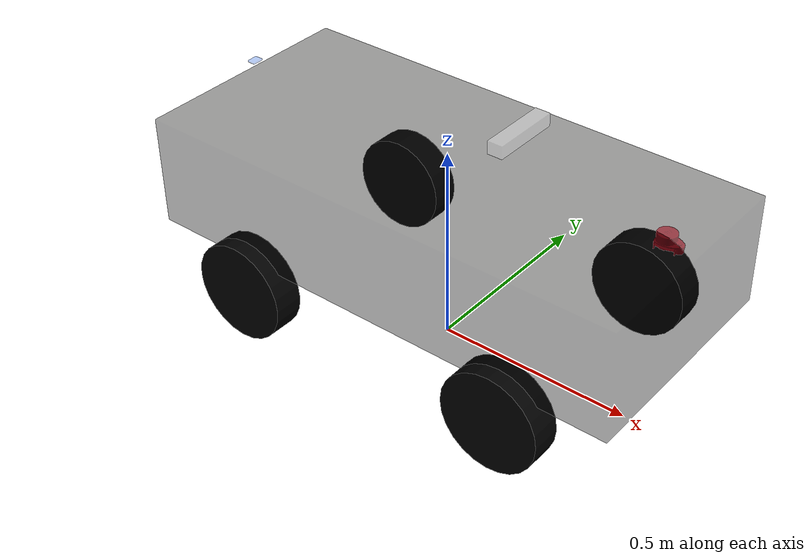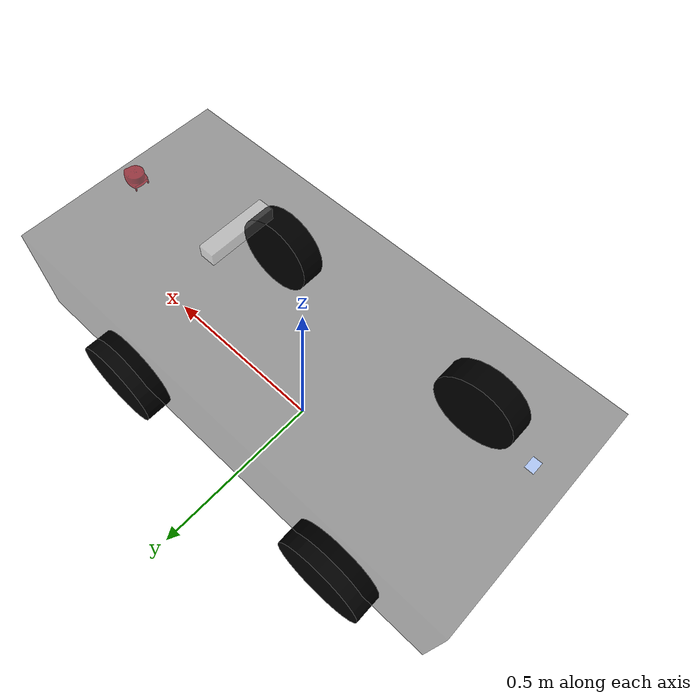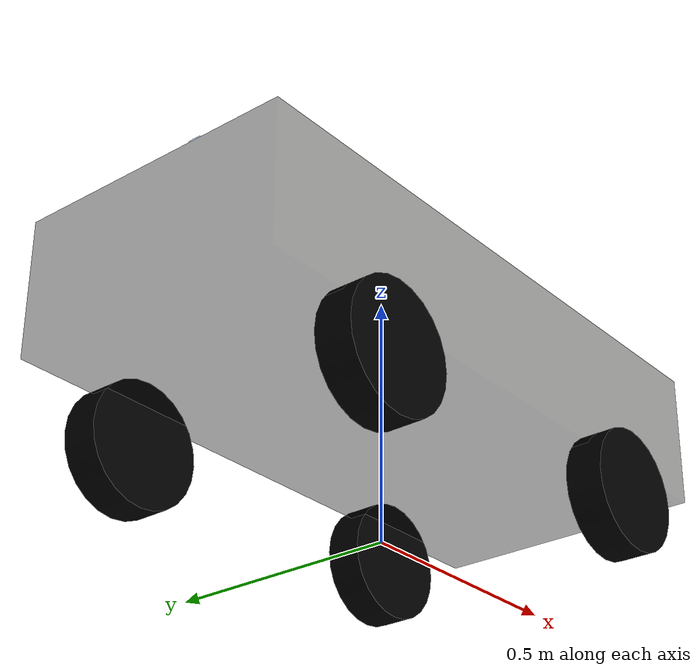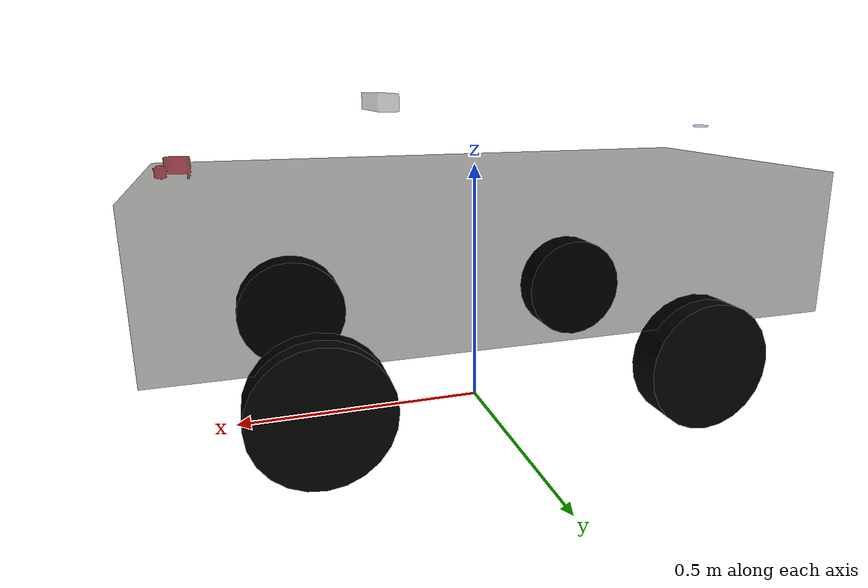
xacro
<?xml version="1.0"?>
<robot
    xmlns:xacro="http://www.ros.org/wiki/xacro"
    name="gigatron">

    <xacro:include filename="$(find gigatron_hardware)/urdf/sensors/zed.urdf.xacro" />
    <xacro:include filename="$(find gigatron_hardware)/urdf/common.urdf.xacro" />
    <xacro:include filename="$(find gigatron_hardware)/urdf/sensors/bno055_imu.urdf.xacro" />
    <xacro:include filename="$(find gigatron_hardware)/urdf/sensors/rplidar.urdf.xacro" />
    <xacro:include filename="$(find gigatron_hardware)/urdf/sensors/xvlidar.urdf.xacro" />

    <!-- Note: Base Link is the center of the robot, right under the batteries. -->

    <!-- Physical Constant Macros -->
    <xacro:property name="M_PI" value="3.1415926535897931" />

    <!-- Dimension Macros -->
    <xacro:property name="car_length" value="1.257" />
    <!--28.5" front to back wheel axes
        Front bumper is 25.5" (0.6477m) front from base,
        Rear bumper is 24" (0.6096m) from base. 1.5" offset.-->

    <xacro:property name="wheelbase_length" value="0.7239" />
    <xacro:property name="wheelbase_width" value="0.5842" />
    <xacro:property name="car_height" value="0.2794" />
    <xacro:property name="wheel_radius" value="0.12446" />
    <xacro:property name="wheel_width" value="0.075" />

    <!-- IMU placement relative to base_link -->
    <xacro:property name="imu_x" value="${-wheelbase_length/2 - 0.19}" />
    <xacro:property name="imu_y" value="-0.035" />
    <xacro:property name="imu_z" value="0.3" />

    <!-- XV LIDAR low-mounted on front, placement relative to base_link -->

    <!--RPLIDAR placement relative to base_link -->
    <xacro:property name="rplidar_x" value=".5588" />
    <xacro:property name="rplidar_y" value="0" />
    <xacro:property name="rplidar_z" value="0.2286" />
    <xacro:property name="rplidar_roll" value="0" />
    <xacro:property name="rplidar_pitch" value="0" />
    <xacro:property name="rplidar_yaw" value="0" />

    <!-- ZED placement relative to base_link -->
    <xacro:property name="zed_x" value="0.19" />
    <xacro:property name="zed_y" value="0.0" />
    <xacro:property name="zed_z" value="0.36" />

    <!-- Main body -->
    <link name="base_link">
        <inertial>
            <mass value="0.2" />
            <origin xyz="0 0 0" />
            <inertia  ixx="0.2" ixy="0.0"  ixz="0.0"  iyy="0.2"  iyz="0.0"  izz="0.2" />
        </inertial>
        <visual>
            <origin xyz="0 0 ${car_height/4+0.02}" rpy="0 0 0" />
            <geometry>
                 <box size="${car_length} ${wheelbase_width} ${car_height}" />
             </geometry>
            <material name="Grey"/>
        </visual>
        <collision>
            <origin xyz=".031 0 0" rpy="0 0 0" />
            <geometry>
                <box size="${car_length} ${wheelbase_width} ${car_height}" />
            </geometry>
        </collision>
    </link>
    <!-- base_footprint (ground) to base_link -->
    <link name="base_footprint" />
    <joint name="base_link_footprint_joint" type="fixed" >
        <parent link="base_footprint" />
        <child link="base_link" />
        <origin xyz="0 0 ${car_height/2+wheel_radius}" rpy="0 0 0" />
    </joint>

    <!-- the front left wheel -->
    <joint name="front_left_wheel_joint" type="revolute" >
        <limit lower="-0.76096" upper="0.76096" effort="100" velocity="10" />
        <axis xyz="0 0 1" />
        <parent link="base_link" />
        <child link="front_left_wheel_link" />
        <origin xyz="${wheelbase_length/2} ${wheelbase_width/2} -${wheel_radius}" rpy="0 0 0" />
    </joint>
    <link name="front_left_wheel_link">
        <inertial>
            <mass value="0.01" />
            <origin xyz="0 0 0" />
            <inertia  ixx="0.01" ixy="0.0"  ixz="0.0"  iyy="0.01"  iyz="0.0"  izz="0.01" />
        </inertial>
        <visual>
            <origin xyz="0 0 0" rpy="${M_PI/2} 0 0" />
            <geometry>
                <cylinder radius="${wheel_radius}" length="${wheel_width}" />
            </geometry>
            <material name="Black"/>
        </visual>
        <collision>
            <origin xyz="0 0 0" rpy="${M_PI/2} 0 0" />
            <geometry>
                <cylinder radius="${wheel_radius}" length="${wheel_width}" />
            </geometry>
        </collision>
    </link>

    <!-- the front right wheel -->
    <joint name="front_right_wheel_joint" type="revolute" >
        <limit lower="-0.76096" upper="0.76096" effort="100" velocity="10" />
        <axis xyz="0 0 1" />
        <parent link="base_link" />
        <child link="front_right_wheel_link" />
        <origin xyz="${wheelbase_length/2} -${wheelbase_width/2} -${wheel_radius}" rpy="0 0 0" />
    </joint>
    <link name="front_right_wheel_link">
        <inertial>
            <mass value="0.01" />
            <origin xyz="0 0 0" />
            <inertia  ixx="0.01" ixy="0.0"  ixz="0.0"  iyy="0.01"  iyz="0.0"  izz="0.01" />
        </inertial>
        <visual>
            <origin xyz="0 0 0" rpy="${M_PI/2} 0 0" />
            <geometry>
                <cylinder radius="${wheel_radius}" length="${wheel_width}" />
            </geometry>
            <material name="Black"/>
        </visual>
        <collision>
            <origin xyz="0 0 0" rpy="${M_PI/2} 0 0" />
            <geometry>
                <cylinder radius="${wheel_radius}" length="${wheel_width}" />
            </geometry>
        </collision>
    </link>

    <!-- the back left wheel -->
    <joint name="low_left_wheel_joint" type="fixed" >
        <parent link="base_link" />
        <child link="low_left_wheel_link" />
        <origin xyz="-${wheelbase_length/2} ${wheelbase_width/2} -${wheel_radius}" rpy="0 0 0" />
    </joint>
    <link name="low_left_wheel_link">
        <inertial>
            <mass value="0.01" />
            <origin xyz="0 0 0" />
            <inertia  ixx="0.01" ixy="0.0"  ixz="0.0"  iyy="0.01"  iyz="0.0"  izz="0.01" />
        </inertial>
        <visual>
            <origin xyz="0 0 0" rpy="${M_PI/2} 0 0" />
            <geometry>
                <cylinder radius="${wheel_radius}" length="${wheel_width}" />
            </geometry>
            <material name="Black"/>
        </visual>
        <collision>
            <origin xyz="0 0 0" rpy="${M_PI/2} 0 0" />
            <geometry>
                <cylinder radius="${wheel_radius}" length="${wheel_width}" />
            </geometry>
        </collision>
    </link>

    <!-- the back right wheel -->
    <joint name="low_right_wheel_joint" type="fixed" >
        <parent link="base_link" />
        <child link="low_right_wheel_link" />
        <origin xyz="-${wheelbase_length/2} -${wheelbase_width/2} -${wheel_radius}" rpy="0 0 0" />
    </joint>
    <link name="low_right_wheel_link">
        <inertial>
            <mass value="0.01" />
            <origin xyz="0 0 0" />
            <inertia  ixx="0.01" ixy="0.0"  ixz="0.0"  iyy="0.01"  iyz="0.0"  izz="0.01" />
        </inertial>
        <visual>
            <origin xyz="0 0 0" rpy="${M_PI/2} 0 0" />
            <geometry>
                <cylinder radius="${wheel_radius}" length="${wheel_width}" />
            </geometry>
            <material name="Black"/>
        </visual>
        <collision>
            <origin xyz="0 0 0" rpy="${M_PI/2} 0 0" />
            <geometry>
                <cylinder radius="${wheel_radius}" length="${wheel_width}" />
            </geometry>
        </collision>
    </link>

    <!-- RPLIDAR -->
    <xacro:rplidar_v0
        name="rplidar"
        parent="base_link">
        <origin
            xyz="${rplidar_x} ${rplidar_y} ${rplidar_z}"
            rpy="${rplidar_roll} ${rplidar_pitch} ${rplidar_yaw}" />
    </xacro:rplidar_v0>

    <!-- XV LIDAR -->

    <!-- IMU -->
    <xacro:bno055_imu_v0
        name="imu"
        parent="base_link">
        <origin
            xyz="${imu_x} ${imu_y} ${imu_z}"
            rpy="0 0 0" />
    </xacro:bno055_imu_v0>

    <!-- ZED -->
    <xacro:zed_v0
        name="zed"
        parent="base_link">
        <origin
            xyz="${zed_x} ${zed_y} ${zed_z}"
            rpy="0 0 0" />
    </xacro:zed_v0>

</robot>

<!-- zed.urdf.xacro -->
<robot xmlns:xacro="http://ros.org/wiki/xacro">

  <property name="zed_cam_separation" value="0.12065" />

  <!-- Stereolabs ZED sensor macro -->
  <xacro:macro name="zed_v0" params="name parent *origin">

    <!-- ZED -->
    <joint name="zed_joint" type="fixed">
       <insert_block name="origin" />
      <parent link="${parent}"/>
        <child link="zed_link"/>
    </joint>
    <link name="zed_link" type="fixed">
        <inertial>
            <mass value="0.2" />
            <origin xyz="0 0 0" />
            <inertia  ixx="0.2" ixy="0.0"  ixz="0.0"  iyy="0.2"  iyz="0.0"  izz="0.2" />
        </inertial>
        <visual>
            <origin xyz="0 0 0" rpy="0 0 0" />
            <geometry>
                <box size="0.0381 0.1717 0.0317" /> <!-- ZED dimensions -->
            </geometry>
            <material name="ZEDGrey">
              <color rgba="0.5 0.5 0.5 0.5"/>
            </material>
          </visual>
        <collision>
            <origin xyz="0 0 0" rpy="0 0 0" />
            <geometry>
                <box size="0.0381 0.1717 0.0317" />
            </geometry>
        </collision>
    </link>

    <!-- optical rotation -->
    <joint name="zed_optical_joint" type="fixed">
        <origin xyz="${0.0381/2} 0 0" rpy="${-M_PI/2} 0 ${-M_PI/2}" />
        <parent link="zed_link"/>
        <child link="zed_optical_frame"/>
    </joint>
    <link name="zed_optical_frame" />

    <!-- left camera -->
    <joint name="zed_left_camera_joint" type="fixed">
        <origin xyz="${0.0381/2} ${zed_cam_separation/2} 0" rpy="0 0 0" />
        <parent link="zed_link"/>
        <child link="left_camera_link"/>
    </joint>
    <link name="left_camera_link" />

    <joint name="left_optical_joint" type="fixed">
        <origin xyz="0 0 0" rpy="${-M_PI/2} 0 ${-M_PI/2}" />
        <parent link="left_camera_link"/>
        <child link="left_optical_frame"/>
    </joint>
    <link name="left_optical_frame" type="fixed" />

    <!-- right camera -->
    <joint name="zed_right_camera_joint" type="fixed">
        <origin xyz="${0.0381/2} -${zed_cam_separation/2} 0" rpy="0 0 0" />
        <parent link="zed_link"/>
        <child link="right_camera_link"/>
    </joint>
    <link name="right_camera_link" />

    <joint name="right_optical_joint" type="fixed">
        <origin xyz="0 0 0" rpy="${-M_PI/2} 0 ${-M_PI/2}" />
        <parent link="right_camera_link"/>
        <child link="right_optical_frame"/>
    </joint>
    <link name="right_optical_frame" />

  </xacro:macro>

</robot>

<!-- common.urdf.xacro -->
<robot
	xmlns:xacro="http://ros.org/wiki/xacro">

    <!-- Physical Constant Macros -->
    <xacro:property name="M_PI" value="3.1415926535897931" />

    <!-- Physical Material Macros -->
    <material name="Grey">
        <color rgba="0 0 0 0.4"/>
    </material>
    <material name="Blue">
        <color rgba="0 0.3 0.9 0.3"/>
    </material>
    <material name="Black">
        <color rgba="0 0 0 0.9"/>
    </material>
    <material name="DarkGrey">
        <color rgba="0.5 0 0.05 0.75"/>
    </material>

</robot>

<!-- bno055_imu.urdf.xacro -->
<robot xmlns:xacro="http://ros.org/wiki/xacro">

  <!-- BNO055 IMU sensor macro -->
  <xacro:macro name="bno055_imu_v0" params="name parent *origin">

    <!-- ZED -->
    <joint name="${name}_joint" type="fixed">
        <insert_block name="origin" />
        <parent link="${parent}"/>
        <child link="${name}_link"/>
    </joint>
    <link name="${name}_link" type="fixed">
                <inertial>
            <mass value="0.01" />
            <origin xyz="0 0 0" />
            <inertia  ixx="0.2" ixy="0.0"  ixz="0.0"  iyy="0.2"  iyz="0.0"  izz="0.2" />
        </inertial>
        <visual>
            <origin xyz="0 0 0" rpy="0 0 0" />
            <geometry>
                <box size="0.02 0.027 0.004" /> <!-- IMU dimensions -->
            </geometry>
            <material name="Blue"/>
        </visual>
        <collision>
            <origin xyz="0 0 0" rpy="0 0 0" />
            <geometry>
                <box size="0.02 0.027 0.004" />
            </geometry>
        </collision>
    </link>

  </xacro:macro>

</robot>

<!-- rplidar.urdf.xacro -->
<robot xmlns:xacro="http://ros.org/wiki/xacro">

  <!-- RPLIDAR sensor macro -->
  <xacro:macro name="rplidar_v0" params="name parent *origin">

    <!-- ZED -->
    <joint name="${name}_joint" type="fixed">
        <insert_block name="origin" />
        <parent link="${parent}"/>
        <child link="${name}_link"/>
    </joint>
    <link name="${name}_link" type="fixed">
        <inertial>
            <mass value="0.1"/>
            <origin xyz="0 0 0"/>
            <inertia ixx="0.1" ixy="0" ixz="0" iyy="0.1" iyz="0" izz="0.1"/>
        </inertial>
        <visual>
            <origin rpy="0 0 0" xyz="0 0 0.02"/>
            <geometry>
                <mesh filename="package://gigatron_hardware/meshes/rplidar.stl" />
            </geometry>
            <material name="DarkGrey"/>
        </visual>
        <collision>
            <origin rpy="0 0 0" xyz="0 0 0.025"/>
            <geometry>
                <box size="0.035 0.035 0.035"/>
            </geometry>
        </collision>
    </link>

  </xacro:macro>

</robot>
